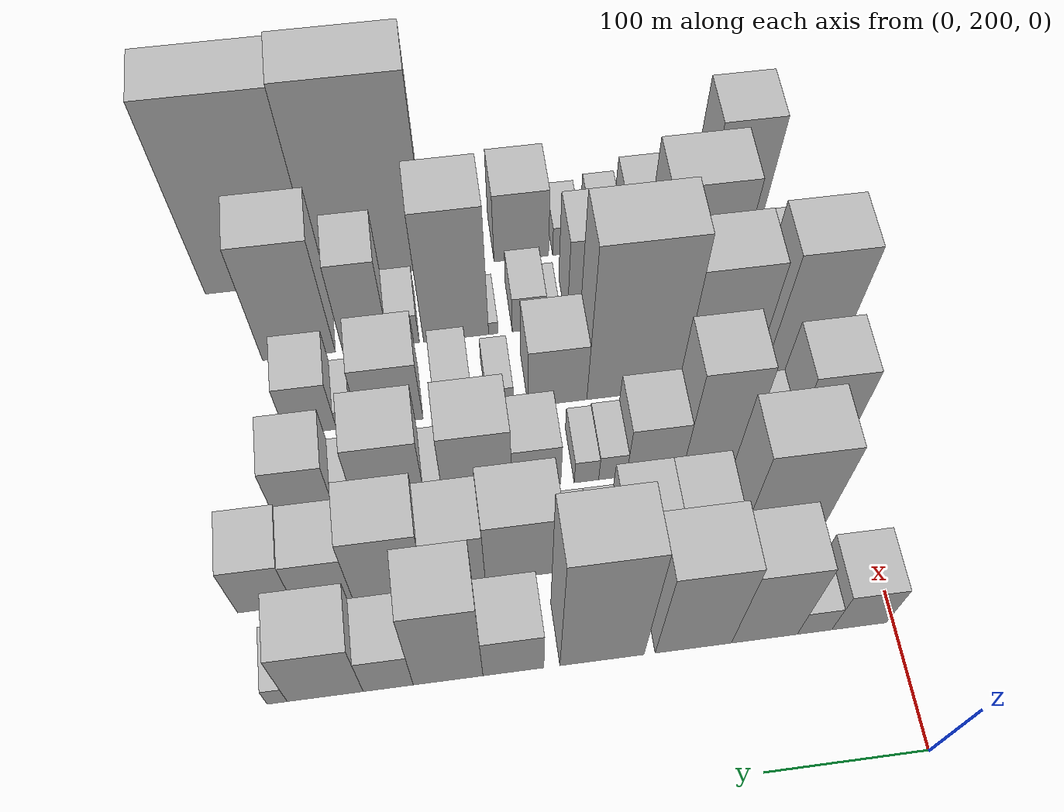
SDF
<sdf version="1.6">
 <world name="default">
  <model name="building_35">
   <static>1</static>
   <pose>100.0000 221.9439 0 0.000000 0.000000 0.000000</pose>
   <link name="link">
    <pose>0 0 30.00 0 0 0</pose>
    <collision name="collision"><geometry><box><size>40.0000 34.8571 60.0000</size></box></geometry></collision>
    <visual name="visual">
     <cast_shadows>0</cast_shadows>
     <geometry><box><size>40.0000 34.8571 60.0000</size></box></geometry>
     <material>
      <script>
       <uri>model://HANNAS_wall/materials/scripts</uri>
       <uri>model://HANNAS_wall/materials/textures</uri>
       <name>vrc/HANNAS_wall</name>
      </script>
     </material>
    </visual>
   </link>
  </model>
  <model name="building_36">
   <static>1</static>
   <pose>100.0000 250.3359 0 0.000000 0.000000 0.000000</pose>
   <link name="link">
    <pose>0 0 19.50 0 0 0</pose>
    <collision name="collision"><geometry><box><size>40.0000 21.9270 39.0000</size></box></geometry></collision>
    <visual name="visual">
     <cast_shadows>0</cast_shadows>
     <geometry><box><size>40.0000 21.9270 39.0000</size></box></geometry>
     <material>
      <script>
       <uri>model://HANNAS_wall/materials/scripts</uri>
       <uri>model://HANNAS_wall/materials/textures</uri>
       <name>vrc/HANNAS_wall</name>
      </script>
     </material>
    </visual>
   </link>
  </model>
  <model name="building_37">
   <static>1</static>
   <pose>100.0000 282.1764 0 0.000000 0.000000 0.000000</pose>
   <link name="link">
    <pose>0 0 58.50 0 0 0</pose>
    <collision name="collision"><geometry><box><size>40.0000 41.7540 117.0000</size></box></geometry></collision>
    <visual name="visual">
     <cast_shadows>0</cast_shadows>
     <geometry><box><size>40.0000 41.7540 117.0000</size></box></geometry>
     <material>
      <script>
       <uri>model://HANNAS_wall/materials/scripts</uri>
       <uri>model://HANNAS_wall/materials/textures</uri>
       <name>vrc/HANNAS_wall</name>
      </script>
     </material>
    </visual>
   </link>
  </model>
  <model name="building_38">
   <static>1</static>
   <pose>100.0000 327.0272 0 0.000000 0.000000 0.000000</pose>
   <link name="link">
    <pose>0 0 66.00 0 0 0</pose>
    <collision name="collision"><geometry><box><size>40.0000 47.9475 132.0000</size></box></geometry></collision>
    <visual name="visual">
     <cast_shadows>0</cast_shadows>
     <geometry><box><size>40.0000 47.9475 132.0000</size></box></geometry>
     <material>
      <script>
       <uri>model://HANNAS_wall/materials/scripts</uri>
       <uri>model://HANNAS_wall/materials/textures</uri>
       <name>vrc/HANNAS_wall</name>
      </script>
     </material>
    </visual>
   </link>
  </model>
  <model name="building_39">
   <static>1</static>
   <pose>100.0000 384.1953 0 0.000000 0.000000 0.000000</pose>
   <link name="link">
    <pose>0 0 87.00 0 0 0</pose>
    <collision name="collision"><geometry><box><size>40.0000 52.3887 174.0000</size></box></geometry></collision>
    <visual name="visual">
     <cast_shadows>0</cast_shadows>
     <geometry><box><size>40.0000 52.3887 174.0000</size></box></geometry>
     <material>
      <script>
       <uri>model://HANNAS_wall/materials/scripts</uri>
       <uri>model://HANNAS_wall/materials/textures</uri>
       <name>vrc/HANNAS_wall</name>
      </script>
     </material>
    </visual>
   </link>
  </model>
  <model name="building_40">
   <static>1</static>
   <pose>100.0000 439.1417 0 0.000000 0.000000 0.000000</pose>
   <link name="link">
    <pose>0 0 31.50 0 0 0</pose>
    <collision name="collision"><geometry><box><size>40.0000 37.5041 63.0000</size></box></geometry></collision>
    <visual name="visual">
     <cast_shadows>0</cast_shadows>
     <geometry><box><size>40.0000 37.5041 63.0000</size></box></geometry>
     <material>
      <script>
       <uri>model://HANNAS_wall/materials/scripts</uri>
       <uri>model://HANNAS_wall/materials/textures</uri>
       <name>vrc/HANNAS_wall</name>
      </script>
     </material>
    </visual>
   </link>
  </model>
  <model name="building_41">
   <static>1</static>
   <pose>100.0000 479.2729 0 0.000000 0.000000 0.000000</pose>
   <link name="link">
    <pose>0 0 63.00 0 0 0</pose>
    <collision name="collision"><geometry><box><size>40.0000 42.7582 126.0000</size></box></geometry></collision>
    <visual name="visual">
     <cast_shadows>0</cast_shadows>
     <geometry><box><size>40.0000 42.7582 126.0000</size></box></geometry>
     <material>
      <script>
       <uri>model://HANNAS_wall/materials/scripts</uri>
       <uri>model://HANNAS_wall/materials/textures</uri>
       <name>vrc/HANNAS_wall</name>
      </script>
     </material>
    </visual>
   </link>
  </model>
  <model name="building_42">
   <static>1</static>
   <pose>100.0000 515.9443 0 0.000000 0.000000 0.000000</pose>
   <link name="link">
    <pose>0 0 28.50 0 0 0</pose>
    <collision name="collision"><geometry><box><size>40.0000 30.5846 57.0000</size></box></geometry></collision>
    <visual name="visual">
     <cast_shadows>0</cast_shadows>
     <geometry><box><size>40.0000 30.5846 57.0000</size></box></geometry>
     <material>
      <script>
       <uri>model://HANNAS_wall/materials/scripts</uri>
       <uri>model://HANNAS_wall/materials/textures</uri>
       <name>vrc/HANNAS_wall</name>
      </script>
     </material>
    </visual>
   </link>
  </model>
  <model name="building_43">
   <static>1</static>
   <pose>100.0000 554.2611 0 0.000000 0.000000 0.000000</pose>
   <link name="link">
    <pose>0 0 42.00 0 0 0</pose>
    <collision name="collision"><geometry><box><size>40.0000 46.0491 84.0000</size></box></geometry></collision>
    <visual name="visual">
     <cast_shadows>0</cast_shadows>
     <geometry><box><size>40.0000 46.0491 84.0000</size></box></geometry>
     <material>
      <script>
       <uri>model://HANNAS_wall/materials/scripts</uri>
       <uri>model://HANNAS_wall/materials/textures</uri>
       <name>vrc/HANNAS_wall</name>
      </script>
     </material>
    </visual>
   </link>
  </model>
  <model name="building_44">
   <static>1</static>
   <pose>100.0000 583.2948 0 0.000000 0.000000 0.000000</pose>
   <link name="link">
    <pose>0 0 13.50 0 0 0</pose>
    <collision name="collision"><geometry><box><size>40.0000 12.0181 27.0000</size></box></geometry></collision>
    <visual name="visual">
     <cast_shadows>0</cast_shadows>
     <geometry><box><size>40.0000 12.0181 27.0000</size></box></geometry>
     <material>
      <script>
       <uri>model://HANNAS_wall/materials/scripts</uri>
       <uri>model://HANNAS_wall/materials/textures</uri>
       <name>vrc/HANNAS_wall</name>
      </script>
     </material>
    </visual>
   </link>
  </model>
  <model name="building_85">
   <static>1</static>
   <pose>160.0000 260.7023 0 0.000000 0.000000 0.000000</pose>
   <link name="link">
    <pose>0 0 69.00 0 0 0</pose>
    <collision name="collision"><geometry><box><size>40.0000 52.0912 138.0000</size></box></geometry></collision>
    <visual name="visual">
     <cast_shadows>0</cast_shadows>
     <geometry><box><size>40.0000 52.0912 138.0000</size></box></geometry>
     <material>
      <script>
       <uri>model://HANNAS_wall/materials/scripts</uri>
       <uri>model://HANNAS_wall/materials/textures</uri>
       <name>vrc/HANNAS_wall</name>
      </script>
     </material>
    </visual>
   </link>
  </model>
  <model name="building_86">
   <static>1</static>
   <pose>160.0000 308.9258 0 0.000000 0.000000 0.000000</pose>
   <link name="link">
    <pose>0 0 33.00 0 0 0</pose>
    <collision name="collision"><geometry><box><size>40.0000 36.3558 66.0000</size></box></geometry></collision>
    <visual name="visual">
     <cast_shadows>0</cast_shadows>
     <geometry><box><size>40.0000 36.3558 66.0000</size></box></geometry>
     <material>
      <script>
       <uri>model://HANNAS_wall/materials/scripts</uri>
       <uri>model://HANNAS_wall/materials/textures</uri>
       <name>vrc/HANNAS_wall</name>
      </script>
     </material>
    </visual>
   </link>
  </model>
  <model name="building_87">
   <static>1</static>
   <pose>160.0000 344.8626 0 0.000000 0.000000 0.000000</pose>
   <link name="link">
    <pose>0 0 33.00 0 0 0</pose>
    <collision name="collision"><geometry><box><size>40.0000 35.5179 66.0000</size></box></geometry></collision>
    <visual name="visual">
     <cast_shadows>0</cast_shadows>
     <geometry><box><size>40.0000 35.5179 66.0000</size></box></geometry>
     <material>
      <script>
       <uri>model://HANNAS_wall/materials/scripts</uri>
       <uri>model://HANNAS_wall/materials/textures</uri>
       <name>vrc/HANNAS_wall</name>
      </script>
     </material>
    </visual>
   </link>
  </model>
  <model name="building_88">
   <static>1</static>
   <pose>160.0000 372.4693 0 0.000000 0.000000 0.000000</pose>
   <link name="link">
    <pose>0 0 18.00 0 0 0</pose>
    <collision name="collision"><geometry><box><size>40.0000 19.6953 36.0000</size></box></geometry></collision>
    <visual name="visual">
     <cast_shadows>0</cast_shadows>
     <geometry><box><size>40.0000 19.6953 36.0000</size></box></geometry>
     <material>
      <script>
       <uri>model://HANNAS_wall/materials/scripts</uri>
       <uri>model://HANNAS_wall/materials/textures</uri>
       <name>vrc/HANNAS_wall</name>
      </script>
     </material>
    </visual>
   </link>
  </model>
  <model name="building_89">
   <static>1</static>
   <pose>160.0000 391.3620 0 0.000000 0.000000 0.000000</pose>
   <link name="link">
    <pose>0 0 18.00 0 0 0</pose>
    <collision name="collision"><geometry><box><size>40.0000 18.0901 36.0000</size></box></geometry></collision>
    <visual name="visual">
     <cast_shadows>0</cast_shadows>
     <geometry><box><size>40.0000 18.0901 36.0000</size></box></geometry>
     <material>
      <script>
       <uri>model://HANNAS_wall/materials/scripts</uri>
       <uri>model://HANNAS_wall/materials/textures</uri>
       <name>vrc/HANNAS_wall</name>
      </script>
     </material>
    </visual>
   </link>
  </model>
  <model name="building_90">
   <static>1</static>
   <pose>160.0000 424.9214 0 0.000000 0.000000 0.000000</pose>
   <link name="link">
    <pose>0 0 43.50 0 0 0</pose>
    <collision name="collision"><geometry><box><size>40.0000 49.0287 87.0000</size></box></geometry></collision>
    <visual name="visual">
     <cast_shadows>0</cast_shadows>
     <geometry><box><size>40.0000 49.0287 87.0000</size></box></geometry>
     <material>
      <script>
       <uri>model://HANNAS_wall/materials/scripts</uri>
       <uri>model://HANNAS_wall/materials/textures</uri>
       <name>vrc/HANNAS_wall</name>
      </script>
     </material>
    </visual>
   </link>
  </model>
  <model name="building_91">
   <static>1</static>
   <pose>160.0000 468.4350 0 0.000000 0.000000 0.000000</pose>
   <link name="link">
    <pose>0 0 37.50 0 0 0</pose>
    <collision name="collision"><geometry><box><size>40.0000 37.9985 75.0000</size></box></geometry></collision>
    <visual name="visual">
     <cast_shadows>0</cast_shadows>
     <geometry><box><size>40.0000 37.9985 75.0000</size></box></geometry>
     <material>
      <script>
       <uri>model://HANNAS_wall/materials/scripts</uri>
       <uri>model://HANNAS_wall/materials/textures</uri>
       <name>vrc/HANNAS_wall</name>
      </script>
     </material>
    </visual>
   </link>
  </model>
  <model name="building_92">
   <static>1</static>
   <pose>160.0000 510.5834 0 0.000000 0.000000 0.000000</pose>
   <link name="link">
    <pose>0 0 45.00 0 0 0</pose>
    <collision name="collision"><geometry><box><size>40.0000 46.2983 90.0000</size></box></geometry></collision>
    <visual name="visual">
     <cast_shadows>0</cast_shadows>
     <geometry><box><size>40.0000 46.2983 90.0000</size></box></geometry>
     <material>
      <script>
       <uri>model://HANNAS_wall/materials/scripts</uri>
       <uri>model://HANNAS_wall/materials/textures</uri>
       <name>vrc/HANNAS_wall</name>
      </script>
     </material>
    </visual>
   </link>
  </model>
  <model name="building_93">
   <static>1</static>
   <pose>160.0000 551.9804 0 0.000000 0.000000 0.000000</pose>
   <link name="link">
    <pose>0 0 33.00 0 0 0</pose>
    <collision name="collision"><geometry><box><size>40.0000 36.4958 66.0000</size></box></geometry></collision>
    <visual name="visual">
     <cast_shadows>0</cast_shadows>
     <geometry><box><size>40.0000 36.4958 66.0000</size></box></geometry>
     <material>
      <script>
       <uri>model://HANNAS_wall/materials/scripts</uri>
       <uri>model://HANNAS_wall/materials/textures</uri>
       <name>vrc/HANNAS_wall</name>
      </script>
     </material>
    </visual>
   </link>
  </model>
  <model name="building_94">
   <static>1</static>
   <pose>160.0000 587.9417 0 0.000000 0.000000 0.000000</pose>
   <link name="link">
    <pose>0 0 34.50 0 0 0</pose>
    <collision name="collision"><geometry><box><size>40.0000 35.4268 69.0000</size></box></geometry></collision>
    <visual name="visual">
     <cast_shadows>0</cast_shadows>
     <geometry><box><size>40.0000 35.4268 69.0000</size></box></geometry>
     <material>
      <script>
       <uri>model://HANNAS_wall/materials/scripts</uri>
       <uri>model://HANNAS_wall/materials/textures</uri>
       <name>vrc/HANNAS_wall</name>
      </script>
     </material>
    </visual>
   </link>
  </model>
  <model name="building_135">
   <static>1</static>
   <pose>220.0000 221.2610 0 0.000000 0.000000 0.000000</pose>
   <link name="link">
    <pose>0 0 54.00 0 0 0</pose>
    <collision name="collision"><geometry><box><size>40.0000 39.7062 108.0000</size></box></geometry></collision>
    <visual name="visual">
     <cast_shadows>0</cast_shadows>
     <geometry><box><size>40.0000 39.7062 108.0000</size></box></geometry>
     <material>
      <script>
       <uri>model://HANNAS_wall/materials/scripts</uri>
       <uri>model://HANNAS_wall/materials/textures</uri>
       <name>vrc/HANNAS_wall</name>
      </script>
     </material>
    </visual>
   </link>
  </model>
  <model name="building_136">
   <static>1</static>
   <pose>220.0000 255.0379 0 0.000000 0.000000 0.000000</pose>
   <link name="link">
    <pose>0 0 24.00 0 0 0</pose>
    <collision name="collision"><geometry><box><size>40.0000 27.8476 48.0000</size></box></geometry></collision>
    <visual name="visual">
     <cast_shadows>0</cast_shadows>
     <geometry><box><size>40.0000 27.8476 48.0000</size></box></geometry>
     <material>
      <script>
       <uri>model://HANNAS_wall/materials/scripts</uri>
       <uri>model://HANNAS_wall/materials/textures</uri>
       <name>vrc/HANNAS_wall</name>
      </script>
     </material>
    </visual>
   </link>
  </model>
  <model name="building_137">
   <static>1</static>
   <pose>220.0000 289.8117 0 0.000000 0.000000 0.000000</pose>
   <link name="link">
    <pose>0 0 64.50 0 0 0</pose>
    <collision name="collision"><geometry><box><size>40.0000 41.7000 129.0000</size></box></geometry></collision>
    <visual name="visual">
     <cast_shadows>0</cast_shadows>
     <geometry><box><size>40.0000 41.7000 129.0000</size></box></geometry>
     <material>
      <script>
       <uri>model://HANNAS_wall/materials/scripts</uri>
       <uri>model://HANNAS_wall/materials/textures</uri>
       <name>vrc/HANNAS_wall</name>
      </script>
     </material>
    </visual>
   </link>
  </model>
  <model name="building_138">
   <static>1</static>
   <pose>220.0000 329.6262 0 0.000000 0.000000 0.000000</pose>
   <link name="link">
    <pose>0 0 33.00 0 0 0</pose>
    <collision name="collision"><geometry><box><size>40.0000 37.9290 66.0000</size></box></geometry></collision>
    <visual name="visual">
     <cast_shadows>0</cast_shadows>
     <geometry><box><size>40.0000 37.9290 66.0000</size></box></geometry>
     <material>
      <script>
       <uri>model://HANNAS_wall/materials/scripts</uri>
       <uri>model://HANNAS_wall/materials/textures</uri>
       <name>vrc/HANNAS_wall</name>
      </script>
     </material>
    </visual>
   </link>
  </model>
  <model name="building_139">
   <static>1</static>
   <pose>220.0000 357.9140 0 0.000000 0.000000 0.000000</pose>
   <link name="link">
    <pose>0 0 16.50 0 0 0</pose>
    <collision name="collision"><geometry><box><size>40.0000 18.6467 33.0000</size></box></geometry></collision>
    <visual name="visual">
     <cast_shadows>0</cast_shadows>
     <geometry><box><size>40.0000 18.6467 33.0000</size></box></geometry>
     <material>
      <script>
       <uri>model://HANNAS_wall/materials/scripts</uri>
       <uri>model://HANNAS_wall/materials/textures</uri>
       <name>vrc/HANNAS_wall</name>
      </script>
     </material>
    </visual>
   </link>
  </model>
  <model name="building_140">
   <static>1</static>
   <pose>220.0000 375.3667 0 0.000000 0.000000 0.000000</pose>
   <link name="link">
    <pose>0 0 15.00 0 0 0</pose>
    <collision name="collision"><geometry><box><size>40.0000 16.2587 30.0000</size></box></geometry></collision>
    <visual name="visual">
     <cast_shadows>0</cast_shadows>
     <geometry><box><size>40.0000 16.2587 30.0000</size></box></geometry>
     <material>
      <script>
       <uri>model://HANNAS_wall/materials/scripts</uri>
       <uri>model://HANNAS_wall/materials/textures</uri>
       <name>vrc/HANNAS_wall</name>
      </script>
     </material>
    </visual>
   </link>
  </model>
  <model name="building_141">
   <static>1</static>
   <pose>220.0000 408.6544 0 0.000000 0.000000 0.000000</pose>
   <link name="link">
    <pose>0 0 28.50 0 0 0</pose>
    <collision name="collision"><geometry><box><size>40.0000 32.3168 57.0000</size></box></geometry></collision>
    <visual name="visual">
     <cast_shadows>0</cast_shadows>
     <geometry><box><size>40.0000 32.3168 57.0000</size></box></geometry>
     <material>
      <script>
       <uri>model://HANNAS_wall/materials/scripts</uri>
       <uri>model://HANNAS_wall/materials/textures</uri>
       <name>vrc/HANNAS_wall</name>
      </script>
     </material>
    </visual>
   </link>
  </model>
  <model name="building_142">
   <static>1</static>
   <pose>220.0000 447.5748 0 0.000000 0.000000 0.000000</pose>
   <link name="link">
    <pose>0 0 43.50 0 0 0</pose>
    <collision name="collision"><geometry><box><size>40.0000 45.5239 87.0000</size></box></geometry></collision>
    <visual name="visual">
     <cast_shadows>0</cast_shadows>
     <geometry><box><size>40.0000 45.5239 87.0000</size></box></geometry>
     <material>
      <script>
       <uri>model://HANNAS_wall/materials/scripts</uri>
       <uri>model://HANNAS_wall/materials/textures</uri>
       <name>vrc/HANNAS_wall</name>
      </script>
     </material>
    </visual>
   </link>
  </model>
  <model name="building_143">
   <static>1</static>
   <pose>220.0000 476.1531 0 0.000000 0.000000 0.000000</pose>
   <link name="link">
    <pose>0 0 13.50 0 0 0</pose>
    <collision name="collision"><geometry><box><size>40.0000 11.6327 27.0000</size></box></geometry></collision>
    <visual name="visual">
     <cast_shadows>0</cast_shadows>
     <geometry><box><size>40.0000 11.6327 27.0000</size></box></geometry>
     <material>
      <script>
       <uri>model://HANNAS_wall/materials/scripts</uri>
       <uri>model://HANNAS_wall/materials/textures</uri>
       <name>vrc/HANNAS_wall</name>
      </script>
     </material>
    </visual>
   </link>
  </model>
  <model name="building_144">
   <static>1</static>
   <pose>220.0000 504.8050 0 0.000000 0.000000 0.000000</pose>
   <link name="link">
    <pose>0 0 43.50 0 0 0</pose>
    <collision name="collision"><geometry><box><size>40.0000 45.6711 87.0000</size></box></geometry></collision>
    <visual name="visual">
     <cast_shadows>0</cast_shadows>
     <geometry><box><size>40.0000 45.6711 87.0000</size></box></geometry>
     <material>
      <script>
       <uri>model://HANNAS_wall/materials/scripts</uri>
       <uri>model://HANNAS_wall/materials/textures</uri>
       <name>vrc/HANNAS_wall</name>
      </script>
     </material>
    </visual>
   </link>
  </model>
  <model name="building_145">
   <static>1</static>
   <pose>220.0000 534.2636 0 0.000000 0.000000 0.000000</pose>
   <link name="link">
    <pose>0 0 13.50 0 0 0</pose>
    <collision name="collision"><geometry><box><size>40.0000 13.2461 27.0000</size></box></geometry></collision>
    <visual name="visual">
     <cast_shadows>0</cast_shadows>
     <geometry><box><size>40.0000 13.2461 27.0000</size></box></geometry>
     <material>
      <script>
       <uri>model://HANNAS_wall/materials/scripts</uri>
       <uri>model://HANNAS_wall/materials/textures</uri>
       <name>vrc/HANNAS_wall</name>
      </script>
     </material>
    </visual>
   </link>
  </model>
  <model name="building_146">
   <static>1</static>
   <pose>220.0000 560.2748 0 0.000000 0.000000 0.000000</pose>
   <link name="link">
    <pose>0 0 34.50 0 0 0</pose>
    <collision name="collision"><geometry><box><size>40.0000 38.7762 69.0000</size></box></geometry></collision>
    <visual name="visual">
     <cast_shadows>0</cast_shadows>
     <geometry><box><size>40.0000 38.7762 69.0000</size></box></geometry>
     <material>
      <script>
       <uri>model://HANNAS_wall/materials/scripts</uri>
       <uri>model://HANNAS_wall/materials/textures</uri>
       <name>vrc/HANNAS_wall</name>
      </script>
     </material>
    </visual>
   </link>
  </model>
  <model name="building_191">
   <static>1</static>
   <pose>280.0000 219.4378 0 0.000000 0.000000 0.000000</pose>
   <link name="link">
    <pose>0 0 75.00 0 0 0</pose>
    <collision name="collision"><geometry><box><size>40.0000 49.0199 150.0000</size></box></geometry></collision>
    <visual name="visual">
     <cast_shadows>0</cast_shadows>
     <geometry><box><size>40.0000 49.0199 150.0000</size></box></geometry>
     <material>
      <script>
       <uri>model://HANNAS_wall/materials/scripts</uri>
       <uri>model://HANNAS_wall/materials/textures</uri>
       <name>vrc/HANNAS_wall</name>
      </script>
     </material>
    </visual>
   </link>
  </model>
  <model name="building_192">
   <static>1</static>
   <pose>280.0000 247.3051 0 0.000000 0.000000 0.000000</pose>
   <link name="link">
    <pose>0 0 7.50 0 0 0</pose>
    <collision name="collision"><geometry><box><size>40.0000 6.7147 15.0000</size></box></geometry></collision>
    <visual name="visual">
     <cast_shadows>0</cast_shadows>
     <geometry><box><size>40.0000 6.7147 15.0000</size></box></geometry>
     <material>
      <script>
       <uri>model://HANNAS_wall/materials/scripts</uri>
       <uri>model://HANNAS_wall/materials/textures</uri>
       <name>vrc/HANNAS_wall</name>
      </script>
     </material>
    </visual>
   </link>
  </model>
  <model name="building_193">
   <static>1</static>
   <pose>280.0000 275.7702 0 0.000000 0.000000 0.000000</pose>
   <link name="link">
    <pose>0 0 72.00 0 0 0</pose>
    <collision name="collision"><geometry><box><size>40.0000 50.2156 144.0000</size></box></geometry></collision>
    <visual name="visual">
     <cast_shadows>0</cast_shadows>
     <geometry><box><size>40.0000 50.2156 144.0000</size></box></geometry>
     <material>
      <script>
       <uri>model://HANNAS_wall/materials/scripts</uri>
       <uri>model://HANNAS_wall/materials/textures</uri>
       <name>vrc/HANNAS_wall</name>
      </script>
     </material>
    </visual>
   </link>
  </model>
  <model name="building_194">
   <static>1</static>
   <pose>280.0000 333.3518 0 0.000000 0.000000 0.000000</pose>
   <link name="link">
    <pose>0 0 91.50 0 0 0</pose>
    <collision name="collision"><geometry><box><size>40.0000 64.9477 183.0000</size></box></geometry></collision>
    <visual name="visual">
     <cast_shadows>0</cast_shadows>
     <geometry><box><size>40.0000 64.9477 183.0000</size></box></geometry>
     <material>
      <script>
       <uri>model://HANNAS_wall/materials/scripts</uri>
       <uri>model://HANNAS_wall/materials/textures</uri>
       <name>vrc/HANNAS_wall</name>
      </script>
     </material>
    </visual>
   </link>
  </model>
  <model name="building_195">
   <static>1</static>
   <pose>280.0000 385.9551 0 0.000000 0.000000 0.000000</pose>
   <link name="link">
    <pose>0 0 36.00 0 0 0</pose>
    <collision name="collision"><geometry><box><size>40.0000 40.2589 72.0000</size></box></geometry></collision>
    <visual name="visual">
     <cast_shadows>0</cast_shadows>
     <geometry><box><size>40.0000 40.2589 72.0000</size></box></geometry>
     <material>
      <script>
       <uri>model://HANNAS_wall/materials/scripts</uri>
       <uri>model://HANNAS_wall/materials/textures</uri>
       <name>vrc/HANNAS_wall</name>
      </script>
     </material>
    </visual>
   </link>
  </model>
  <model name="building_196">
   <static>1</static>
   <pose>280.0000 425.0817 0 0.000000 0.000000 0.000000</pose>
   <link name="link">
    <pose>0 0 15.00 0 0 0</pose>
    <collision name="collision"><geometry><box><size>40.0000 17.9942 30.0000</size></box></geometry></collision>
    <visual name="visual">
     <cast_shadows>0</cast_shadows>
     <geometry><box><size>40.0000 17.9942 30.0000</size></box></geometry>
     <material>
      <script>
       <uri>model://HANNAS_wall/materials/scripts</uri>
       <uri>model://HANNAS_wall/materials/textures</uri>
       <name>vrc/HANNAS_wall</name>
      </script>
     </material>
    </visual>
   </link>
  </model>
  <model name="building_197">
   <static>1</static>
   <pose>280.0000 456.4203 0 0.000000 0.000000 0.000000</pose>
   <link name="link">
    <pose>0 0 24.00 0 0 0</pose>
    <collision name="collision"><geometry><box><size>40.0000 24.6829 48.0000</size></box></geometry></collision>
    <visual name="visual">
     <cast_shadows>0</cast_shadows>
     <geometry><box><size>40.0000 24.6829 48.0000</size></box></geometry>
     <material>
      <script>
       <uri>model://HANNAS_wall/materials/scripts</uri>
       <uri>model://HANNAS_wall/materials/textures</uri>
       <name>vrc/HANNAS_wall</name>
      </script>
     </material>
    </visual>
   </link>
  </model>
  <model name="building_198">
   <static>1</static>
   <pose>280.0000 499.4107 0 0.000000 0.000000 0.000000</pose>
   <link name="link">
    <pose>0 0 37.50 0 0 0</pose>
    <collision name="collision"><geometry><box><size>40.0000 43.2981 75.0000</size></box></geometry></collision>
    <visual name="visual">
     <cast_shadows>0</cast_shadows>
     <geometry><box><size>40.0000 43.2981 75.0000</size></box></geometry>
     <material>
      <script>
       <uri>model://HANNAS_wall/materials/scripts</uri>
       <uri>model://HANNAS_wall/materials/textures</uri>
       <name>vrc/HANNAS_wall</name>
      </script>
     </material>
    </visual>
   </link>
  </model>
  <model name="building_199">
   <static>1</static>
   <pose>280.0000 530.6323 0 0.000000 0.000000 0.000000</pose>
   <link name="link">
    <pose>0 0 12.00 0 0 0</pose>
    <collision name="collision"><geometry><box><size>40.0000 11.1450 24.0000</size></box></geometry></collision>
    <visual name="visual">
     <cast_shadows>0</cast_shadows>
     <geometry><box><size>40.0000 11.1450 24.0000</size></box></geometry>
     <material>
      <script>
       <uri>model://HANNAS_wall/materials/scripts</uri>
       <uri>model://HANNAS_wall/materials/textures</uri>
       <name>vrc/HANNAS_wall</name>
      </script>
     </material>
    </visual>
   </link>
  </model>
  <model name="building_200">
   <static>1</static>
   <pose>280.0000 553.0725 0 0.000000 0.000000 0.000000</pose>
   <link name="link">
    <pose>0 0 31.50 0 0 0</pose>
    <collision name="collision"><geometry><box><size>40.0000 33.7355 63.0000</size></box></geometry></collision>
    <visual name="visual">
     <cast_shadows>0</cast_shadows>
     <geometry><box><size>40.0000 33.7355 63.0000</size></box></geometry>
     <material>
      <script>
       <uri>model://HANNAS_wall/materials/scripts</uri>
       <uri>model://HANNAS_wall/materials/textures</uri>
       <name>vrc/HANNAS_wall</name>
      </script>
     </material>
    </visual>
   </link>
  </model>
  <model name="building_241">
   <static>1</static>
   <pose>340.0000 228.9895 0 0.000000 0.000000 0.000000</pose>
   <link name="link">
    <pose>0 0 28.50 0 0 0</pose>
    <collision name="collision"><geometry><box><size>40.0000 32.3778 57.0000</size></box></geometry></collision>
    <visual name="visual">
     <cast_shadows>0</cast_shadows>
     <geometry><box><size>40.0000 32.3778 57.0000</size></box></geometry>
     <material>
      <script>
       <uri>model://HANNAS_wall/materials/scripts</uri>
       <uri>model://HANNAS_wall/materials/textures</uri>
       <name>vrc/HANNAS_wall</name>
      </script>
     </material>
    </visual>
   </link>
  </model>
  <model name="building_242">
   <static>1</static>
   <pose>340.0000 281.2022 0 0.000000 0.000000 0.000000</pose>
   <link name="link">
    <pose>0 0 73.50 0 0 0</pose>
    <collision name="collision"><geometry><box><size>40.0000 56.0475 147.0000</size></box></geometry></collision>
    <visual name="visual">
     <cast_shadows>0</cast_shadows>
     <geometry><box><size>40.0000 56.0475 147.0000</size></box></geometry>
     <material>
      <script>
       <uri>model://HANNAS_wall/materials/scripts</uri>
       <uri>model://HANNAS_wall/materials/textures</uri>
       <name>vrc/HANNAS_wall</name>
      </script>
     </material>
    </visual>
   </link>
  </model>
  <model name="building_243">
   <static>1</static>
   <pose>340.0000 317.5434 0 0.000000 0.000000 0.000000</pose>
   <link name="link">
    <pose>0 0 15.00 0 0 0</pose>
    <collision name="collision"><geometry><box><size>40.0000 16.6349 30.0000</size></box></geometry></collision>
    <visual name="visual">
     <cast_shadows>0</cast_shadows>
     <geometry><box><size>40.0000 16.6349 30.0000</size></box></geometry>
     <material>
      <script>
       <uri>model://HANNAS_wall/materials/scripts</uri>
       <uri>model://HANNAS_wall/materials/textures</uri>
       <name>vrc/HANNAS_wall</name>
      </script>
     </material>
    </visual>
   </link>
  </model>
  <model name="building_244">
   <static>1</static>
   <pose>340.0000 351.2857 0 0.000000 0.000000 0.000000</pose>
   <link name="link">
    <pose>0 0 51.00 0 0 0</pose>
    <collision name="collision"><geometry><box><size>40.0000 38.8499 102.0000</size></box></geometry></collision>
    <visual name="visual">
     <cast_shadows>0</cast_shadows>
     <geometry><box><size>40.0000 38.8499 102.0000</size></box></geometry>
     <material>
      <script>
       <uri>model://HANNAS_wall/materials/scripts</uri>
       <uri>model://HANNAS_wall/materials/textures</uri>
       <name>vrc/HANNAS_wall</name>
      </script>
     </material>
    </visual>
   </link>
  </model>
  <model name="building_245">
   <static>1</static>
   <pose>340.0000 380.5827 0 0.000000 0.000000 0.000000</pose>
   <link name="link">
    <pose>0 0 10.50 0 0 0</pose>
    <collision name="collision"><geometry><box><size>40.0000 9.7441 21.0000</size></box></geometry></collision>
    <visual name="visual">
     <cast_shadows>0</cast_shadows>
     <geometry><box><size>40.0000 9.7441 21.0000</size></box></geometry>
     <material>
      <script>
       <uri>model://HANNAS_wall/materials/scripts</uri>
       <uri>model://HANNAS_wall/materials/textures</uri>
       <name>vrc/HANNAS_wall</name>
      </script>
     </material>
    </visual>
   </link>
  </model>
  <model name="building_246">
   <static>1</static>
   <pose>340.0000 397.4285 0 0.000000 0.000000 0.000000</pose>
   <link name="link">
    <pose>0 0 21.00 0 0 0</pose>
    <collision name="collision"><geometry><box><size>40.0000 23.9475 42.0000</size></box></geometry></collision>
    <visual name="visual">
     <cast_shadows>0</cast_shadows>
     <geometry><box><size>40.0000 23.9475 42.0000</size></box></geometry>
     <material>
      <script>
       <uri>model://HANNAS_wall/materials/scripts</uri>
       <uri>model://HANNAS_wall/materials/textures</uri>
       <name>vrc/HANNAS_wall</name>
      </script>
     </material>
    </visual>
   </link>
  </model>
  <model name="building_247">
   <static>1</static>
   <pose>340.0000 422.7365 0 0.000000 0.000000 0.000000</pose>
   <link name="link">
    <pose>0 0 7.50 0 0 0</pose>
    <collision name="collision"><geometry><box><size>40.0000 6.6684 15.0000</size></box></geometry></collision>
    <visual name="visual">
     <cast_shadows>0</cast_shadows>
     <geometry><box><size>40.0000 6.6684 15.0000</size></box></geometry>
     <material>
      <script>
       <uri>model://HANNAS_wall/materials/scripts</uri>
       <uri>model://HANNAS_wall/materials/textures</uri>
       <name>vrc/HANNAS_wall</name>
      </script>
     </material>
    </visual>
   </link>
  </model>
  <model name="building_248">
   <static>1</static>
   <pose>340.0000 448.9120 0 0.000000 0.000000 0.000000</pose>
   <link name="link">
    <pose>0 0 75.00 0 0 0</pose>
    <collision name="collision"><geometry><box><size>40.0000 45.6825 150.0000</size></box></geometry></collision>
    <visual name="visual">
     <cast_shadows>0</cast_shadows>
     <geometry><box><size>40.0000 45.6825 150.0000</size></box></geometry>
     <material>
      <script>
       <uri>model://HANNAS_wall/materials/scripts</uri>
       <uri>model://HANNAS_wall/materials/textures</uri>
       <name>vrc/HANNAS_wall</name>
      </script>
     </material>
    </visual>
   </link>
  </model>
  <model name="building_249">
   <static>1</static>
   <pose>340.0000 485.3984 0 0.000000 0.000000 0.000000</pose>
   <link name="link">
    <pose>0 0 18.00 0 0 0</pose>
    <collision name="collision"><geometry><box><size>40.0000 21.2903 36.0000</size></box></geometry></collision>
    <visual name="visual">
     <cast_shadows>0</cast_shadows>
     <geometry><box><size>40.0000 21.2903 36.0000</size></box></geometry>
     <material>
      <script>
       <uri>model://HANNAS_wall/materials/scripts</uri>
       <uri>model://HANNAS_wall/materials/textures</uri>
       <name>vrc/HANNAS_wall</name>
      </script>
     </material>
    </visual>
   </link>
  </model>
  <model name="building_250">
   <static>1</static>
   <pose>340.0000 512.1878 0 0.000000 0.000000 0.000000</pose>
   <link name="link">
    <pose>0 0 52.50 0 0 0</pose>
    <collision name="collision"><geometry><box><size>40.0000 32.2884 105.0000</size></box></geometry></collision>
    <visual name="visual">
     <cast_shadows>0</cast_shadows>
     <geometry><box><size>40.0000 32.2884 105.0000</size></box></geometry>
     <material>
      <script>
       <uri>model://HANNAS_wall/materials/scripts</uri>
       <uri>model://HANNAS_wall/materials/textures</uri>
       <name>vrc/HANNAS_wall</name>
      </script>
     </material>
    </visual>
   </link>
  </model>
  <model name="building_251">
   <static>1</static>
   <pose>340.0000 558.5332 0 0.000000 0.000000 0.000000</pose>
   <link name="link">
    <pose>0 0 67.50 0 0 0</pose>
    <collision name="collision"><geometry><box><size>40.0000 50.4024 135.0000</size></box></geometry></collision>
    <visual name="visual">
     <cast_shadows>0</cast_shadows>
     <geometry><box><size>40.0000 50.4024 135.0000</size></box></geometry>
     <material>
      <script>
       <uri>model://HANNAS_wall/materials/scripts</uri>
       <uri>model://HANNAS_wall/materials/textures</uri>
       <name>vrc/HANNAS_wall</name>
      </script>
     </material>
    </visual>
   </link>
  </model>
  <model name="building_293">
   <static>1</static>
   <pose>400.0000 241.5528 0 0.000000 0.000000 0.000000</pose>
   <link name="link">
    <pose>0 0 64.50 0 0 0</pose>
    <collision name="collision"><geometry><box><size>40.0000 42.3587 129.0000</size></box></geometry></collision>
    <visual name="visual">
     <cast_shadows>0</cast_shadows>
     <geometry><box><size>40.0000 42.3587 129.0000</size></box></geometry>
     <material>
      <script>
       <uri>model://HANNAS_wall/materials/scripts</uri>
       <uri>model://HANNAS_wall/materials/textures</uri>
       <name>vrc/HANNAS_wall</name>
      </script>
     </material>
    </visual>
   </link>
  </model>
  <model name="building_294">
   <static>1</static>
   <pose>400.0000 276.4928 0 0.000000 0.000000 0.000000</pose>
   <link name="link">
    <pose>0 0 24.00 0 0 0</pose>
    <collision name="collision"><geometry><box><size>40.0000 27.5214 48.0000</size></box></geometry></collision>
    <visual name="visual">
     <cast_shadows>0</cast_shadows>
     <geometry><box><size>40.0000 27.5214 48.0000</size></box></geometry>
     <material>
      <script>
       <uri>model://HANNAS_wall/materials/scripts</uri>
       <uri>model://HANNAS_wall/materials/textures</uri>
       <name>vrc/HANNAS_wall</name>
      </script>
     </material>
    </visual>
   </link>
  </model>
  <model name="building_295">
   <static>1</static>
   <pose>400.0000 305.2986 0 0.000000 0.000000 0.000000</pose>
   <link name="link">
    <pose>0 0 27.00 0 0 0</pose>
    <collision name="collision"><geometry><box><size>40.0000 30.0902 54.0000</size></box></geometry></collision>
    <visual name="visual">
     <cast_shadows>0</cast_shadows>
     <geometry><box><size>40.0000 30.0902 54.0000</size></box></geometry>
     <material>
      <script>
       <uri>model://HANNAS_wall/materials/scripts</uri>
       <uri>model://HANNAS_wall/materials/textures</uri>
       <name>vrc/HANNAS_wall</name>
      </script>
     </material>
    </visual>
   </link>
  </model>
  <model name="building_296">
   <static>1</static>
   <pose>400.0000 334.4849 0 0.000000 0.000000 0.000000</pose>
   <link name="link">
    <pose>0 0 19.50 0 0 0</pose>
    <collision name="collision"><geometry><box><size>40.0000 22.2824 39.0000</size></box></geometry></collision>
    <visual name="visual">
     <cast_shadows>0</cast_shadows>
     <geometry><box><size>40.0000 22.2824 39.0000</size></box></geometry>
     <material>
      <script>
       <uri>model://HANNAS_wall/materials/scripts</uri>
       <uri>model://HANNAS_wall/materials/textures</uri>
       <name>vrc/HANNAS_wall</name>
      </script>
     </material>
    </visual>
   </link>
  </model>
  <model name="building_297">
   <static>1</static>
   <pose>400.0000 362.4634 0 0.000000 0.000000 0.000000</pose>
   <link name="link">
    <pose>0 0 16.50 0 0 0</pose>
    <collision name="collision"><geometry><box><size>40.0000 19.6745 33.0000</size></box></geometry></collision>
    <visual name="visual">
     <cast_shadows>0</cast_shadows>
     <geometry><box><size>40.0000 19.6745 33.0000</size></box></geometry>
     <material>
      <script>
       <uri>model://HANNAS_wall/materials/scripts</uri>
       <uri>model://HANNAS_wall/materials/textures</uri>
       <name>vrc/HANNAS_wall</name>
      </script>
     </material>
    </visual>
   </link>
  </model>
  <model name="building_298">
   <static>1</static>
   <pose>400.0000 395.1809 0 0.000000 0.000000 0.000000</pose>
   <link name="link">
    <pose>0 0 39.00 0 0 0</pose>
    <collision name="collision"><geometry><box><size>40.0000 39.7606 78.0000</size></box></geometry></collision>
    <visual name="visual">
     <cast_shadows>0</cast_shadows>
     <geometry><box><size>40.0000 39.7606 78.0000</size></box></geometry>
     <material>
      <script>
       <uri>model://HANNAS_wall/materials/scripts</uri>
       <uri>model://HANNAS_wall/materials/textures</uri>
       <name>vrc/HANNAS_wall</name>
      </script>
     </material>
    </visual>
   </link>
  </model>
  <model name="building_299">
   <static>1</static>
   <pose>400.0000 443.0129 0 0.000000 0.000000 0.000000</pose>
   <link name="link">
    <pose>0 0 36.00 0 0 0</pose>
    <collision name="collision"><geometry><box><size>40.0000 39.9034 72.0000</size></box></geometry></collision>
    <visual name="visual">
     <cast_shadows>0</cast_shadows>
     <geometry><box><size>40.0000 39.9034 72.0000</size></box></geometry>
     <material>
      <script>
       <uri>model://HANNAS_wall/materials/scripts</uri>
       <uri>model://HANNAS_wall/materials/textures</uri>
       <name>vrc/HANNAS_wall</name>
      </script>
     </material>
    </visual>
   </link>
  </model>
  <model name="building_300">
   <static>1</static>
   <pose>400.0000 502.6085 0 0.000000 0.000000 0.000000</pose>
   <link name="link">
    <pose>0 0 103.50 0 0 0</pose>
    <collision name="collision"><geometry><box><size>40.0000 79.2877 207.0000</size></box></geometry></collision>
    <visual name="visual">
     <cast_shadows>0</cast_shadows>
     <geometry><box><size>40.0000 79.2877 207.0000</size></box></geometry>
     <material>
      <script>
       <uri>model://HANNAS_wall/materials/scripts</uri>
       <uri>model://HANNAS_wall/materials/textures</uri>
       <name>vrc/HANNAS_wall</name>
      </script>
     </material>
    </visual>
   </link>
  </model>
  <model name="building_301">
   <static>1</static>
   <pose>400.0000 582.2940 0 0.000000 0.000000 0.000000</pose>
   <link name="link">
    <pose>0 0 102.00 0 0 0</pose>
    <collision name="collision"><geometry><box><size>40.0000 80.0833 204.0000</size></box></geometry></collision>
    <visual name="visual">
     <cast_shadows>0</cast_shadows>
     <geometry><box><size>40.0000 80.0833 204.0000</size></box></geometry>
     <material>
      <script>
       <uri>model://HANNAS_wall/materials/scripts</uri>
       <uri>model://HANNAS_wall/materials/textures</uri>
       <name>vrc/HANNAS_wall</name>
      </script>
     </material>
    </visual>
   </link>
  </model>
 </world>
</sdf>
